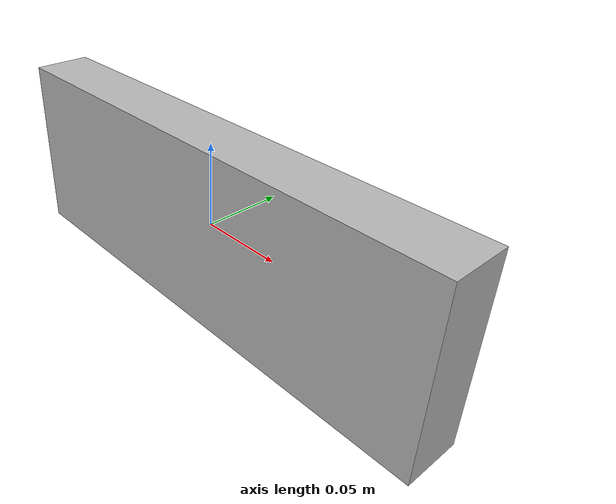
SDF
<?xml version='1.0'?>
<sdf version='1.7'>
  <model name='door104'>
    <link name='link_0'>
      <inertial>
        <mass>0.00125828</mass>
        <inertia>
          <ixx>1.45989e-06</ixx>
          <ixy>0</ixy>
          <ixz>0</ixz>
          <iyy>1.17334e-05</iyy>
          <iyz>0</iyz>
          <izz>1.05402e-05</izz>
        </inertia>
        <pose>0 0 0 0 -0 0</pose>
      </inertial>
      <pose>0 0 0 0 -0 0</pose>
      <visual name='visual'>
        <pose>0 0 0 0 -0 0</pose>
        <geometry>
          <box>
            <size>0.315037 0.035663 0.112476</size>
          </box>
        </geometry>
        <material>
          <lighting>1</lighting>
          <script>
            <uri>model://door104/materials/scripts</uri>
            <uri>model://door104/materials/textures/</uri>
            <name>Door/no104</name>
          </script>
          <shader type='pixel'/>
        </material>
        <transparency>0</transparency>
        <cast_shadows>1</cast_shadows>
      </visual>
      <collision name='collision'>
        <laser_retro>0</laser_retro>
        <max_contacts>10</max_contacts>
        <pose>0 0 0 0 -0 0</pose>
        <geometry>
          <box>
            <size>0.315037 0.035663 0.112476</size>
          </box>
        </geometry>
        <surface>
          <friction>
            <ode>
              <mu>1</mu>
              <mu2>1</mu2>
              <fdir1>0 0 0</fdir1>
              <slip1>0</slip1>
              <slip2>0</slip2>
            </ode>
            <torsional>
              <coefficient>1</coefficient>
              <patch_radius>0</patch_radius>
              <surface_radius>0</surface_radius>
              <use_patch_radius>1</use_patch_radius>
              <ode>
                <slip>0</slip>
              </ode>
            </torsional>
          </friction>
          <bounce>
            <restitution_coefficient>0</restitution_coefficient>
            <threshold>1e+06</threshold>
          </bounce>
          <contact>
            <collide_without_contact>0</collide_without_contact>
            <collide_without_contact_bitmask>1</collide_without_contact_bitmask>
            <collide_bitmask>1</collide_bitmask>
            <ode>
              <soft_cfm>0</soft_cfm>
              <soft_erp>0.2</soft_erp>
              <kp>1e+13</kp>
              <kd>1</kd>
              <max_vel>0.01</max_vel>
              <min_depth>0</min_depth>
            </ode>
            <bullet>
              <split_impulse>1</split_impulse>
              <split_impulse_penetration_threshold>-0.01</split_impulse_penetration_threshold>
              <soft_cfm>0</soft_cfm>
              <soft_erp>0.2</soft_erp>
              <kp>1e+13</kp>
              <kd>1</kd>
            </bullet>
          </contact>
        </surface>
      </collision>
    </link>
    <static>1</static>
    <allow_auto_disable>1</allow_auto_disable>
  </model>
</sdf>
